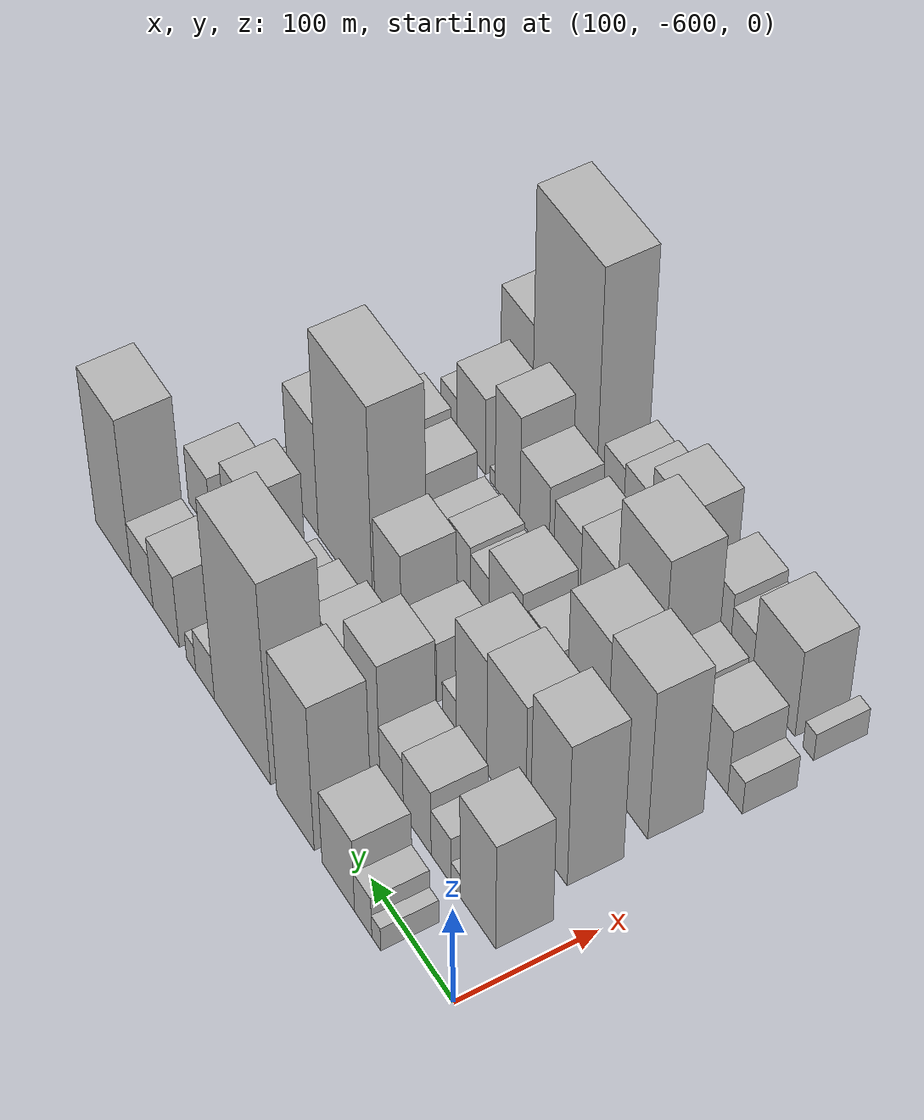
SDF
<sdf version="1.6">
 <world name="default">
  <model name="building_11">
   <static>1</static>
   <pose>100.0000 -541.8997 0 0.000000 0.000000 0.000000</pose>
   <link name="link">
    <pose>0 0 12.00 0 0 0</pose>
    <collision name="collision"><geometry><box><size>40.0000 10.8833 24.0000</size></box></geometry></collision>
    <visual name="visual">
     <cast_shadows>0</cast_shadows>
     <geometry><box><size>40.0000 10.8833 24.0000</size></box></geometry>
     <material>
      <script>
       <uri>model://HANNAS_wall/materials/scripts</uri>
       <uri>model://HANNAS_wall/materials/textures</uri>
       <name>vrc/HANNAS_wall</name>
      </script>
     </material>
    </visual>
   </link>
  </model>
  <model name="building_12">
   <static>1</static>
   <pose>100.0000 -525.7774 0 0.000000 0.000000 0.000000</pose>
   <link name="link">
    <pose>0 0 21.00 0 0 0</pose>
    <collision name="collision"><geometry><box><size>40.0000 21.3615 42.0000</size></box></geometry></collision>
    <visual name="visual">
     <cast_shadows>0</cast_shadows>
     <geometry><box><size>40.0000 21.3615 42.0000</size></box></geometry>
     <material>
      <script>
       <uri>model://HANNAS_wall/materials/scripts</uri>
       <uri>model://HANNAS_wall/materials/textures</uri>
       <name>vrc/HANNAS_wall</name>
      </script>
     </material>
    </visual>
   </link>
  </model>
  <model name="building_13">
   <static>1</static>
   <pose>100.0000 -494.7226 0 0.000000 0.000000 0.000000</pose>
   <link name="link">
    <pose>0 0 37.50 0 0 0</pose>
    <collision name="collision"><geometry><box><size>40.0000 40.7482 75.0000</size></box></geometry></collision>
    <visual name="visual">
     <cast_shadows>0</cast_shadows>
     <geometry><box><size>40.0000 40.7482 75.0000</size></box></geometry>
     <material>
      <script>
       <uri>model://HANNAS_wall/materials/scripts</uri>
       <uri>model://HANNAS_wall/materials/textures</uri>
       <name>vrc/HANNAS_wall</name>
      </script>
     </material>
    </visual>
   </link>
  </model>
  <model name="building_14">
   <static>1</static>
   <pose>100.0000 -440.2460 0 0.000000 0.000000 0.000000</pose>
   <link name="link">
    <pose>0 0 73.50 0 0 0</pose>
    <collision name="collision"><geometry><box><size>40.0000 48.2050 147.0000</size></box></geometry></collision>
    <visual name="visual">
     <cast_shadows>0</cast_shadows>
     <geometry><box><size>40.0000 48.2050 147.0000</size></box></geometry>
     <material>
      <script>
       <uri>model://HANNAS_wall/materials/scripts</uri>
       <uri>model://HANNAS_wall/materials/textures</uri>
       <name>vrc/HANNAS_wall</name>
      </script>
     </material>
    </visual>
   </link>
  </model>
  <model name="building_15">
   <static>1</static>
   <pose>100.0000 -370.8228 0 0.000000 0.000000 0.000000</pose>
   <link name="link">
    <pose>0 0 100.50 0 0 0</pose>
    <collision name="collision"><geometry><box><size>40.0000 74.6413 201.0000</size></box></geometry></collision>
    <visual name="visual">
     <cast_shadows>0</cast_shadows>
     <geometry><box><size>40.0000 74.6413 201.0000</size></box></geometry>
     <material>
      <script>
       <uri>model://HANNAS_wall/materials/scripts</uri>
       <uri>model://HANNAS_wall/materials/textures</uri>
       <name>vrc/HANNAS_wall</name>
      </script>
     </material>
    </visual>
   </link>
  </model>
  <model name="building_16">
   <static>1</static>
   <pose>100.0000 -320.7585 0 0.000000 0.000000 0.000000</pose>
   <link name="link">
    <pose>0 0 22.50 0 0 0</pose>
    <collision name="collision"><geometry><box><size>40.0000 25.4874 45.0000</size></box></geometry></collision>
    <visual name="visual">
     <cast_shadows>0</cast_shadows>
     <geometry><box><size>40.0000 25.4874 45.0000</size></box></geometry>
     <material>
      <script>
       <uri>model://HANNAS_wall/materials/scripts</uri>
       <uri>model://HANNAS_wall/materials/textures</uri>
       <name>vrc/HANNAS_wall</name>
      </script>
     </material>
    </visual>
   </link>
  </model>
  <model name="building_17">
   <static>1</static>
   <pose>100.0000 -301.6495 0 0.000000 0.000000 0.000000</pose>
   <link name="link">
    <pose>0 0 13.50 0 0 0</pose>
    <collision name="collision"><geometry><box><size>40.0000 12.7305 27.0000</size></box></geometry></collision>
    <visual name="visual">
     <cast_shadows>0</cast_shadows>
     <geometry><box><size>40.0000 12.7305 27.0000</size></box></geometry>
     <material>
      <script>
       <uri>model://HANNAS_wall/materials/scripts</uri>
       <uri>model://HANNAS_wall/materials/textures</uri>
       <name>vrc/HANNAS_wall</name>
      </script>
     </material>
    </visual>
   </link>
  </model>
  <model name="building_18">
   <static>1</static>
   <pose>100.0000 -267.0045 0 0.000000 0.000000 0.000000</pose>
   <link name="link">
    <pose>0 0 36.00 0 0 0</pose>
    <collision name="collision"><geometry><box><size>40.0000 36.5595 72.0000</size></box></geometry></collision>
    <visual name="visual">
     <cast_shadows>0</cast_shadows>
     <geometry><box><size>40.0000 36.5595 72.0000</size></box></geometry>
     <material>
      <script>
       <uri>model://HANNAS_wall/materials/scripts</uri>
       <uri>model://HANNAS_wall/materials/textures</uri>
       <name>vrc/HANNAS_wall</name>
      </script>
     </material>
    </visual>
   </link>
  </model>
  <model name="building_19">
   <static>1</static>
   <pose>100.0000 -233.3012 0 0.000000 0.000000 0.000000</pose>
   <link name="link">
    <pose>0 0 27.00 0 0 0</pose>
    <collision name="collision"><geometry><box><size>40.0000 30.8471 54.0000</size></box></geometry></collision>
    <visual name="visual">
     <cast_shadows>0</cast_shadows>
     <geometry><box><size>40.0000 30.8471 54.0000</size></box></geometry>
     <material>
      <script>
       <uri>model://HANNAS_wall/materials/scripts</uri>
       <uri>model://HANNAS_wall/materials/textures</uri>
       <name>vrc/HANNAS_wall</name>
      </script>
     </material>
    </visual>
   </link>
  </model>
  <model name="building_20">
   <static>1</static>
   <pose>100.0000 -192.1349 0 0.000000 0.000000 0.000000</pose>
   <link name="link">
    <pose>0 0 76.50 0 0 0</pose>
    <collision name="collision"><geometry><box><size>40.0000 51.4855 153.0000</size></box></geometry></collision>
    <visual name="visual">
     <cast_shadows>0</cast_shadows>
     <geometry><box><size>40.0000 51.4855 153.0000</size></box></geometry>
     <material>
      <script>
       <uri>model://HANNAS_wall/materials/scripts</uri>
       <uri>model://HANNAS_wall/materials/textures</uri>
       <name>vrc/HANNAS_wall</name>
      </script>
     </material>
    </visual>
   </link>
  </model>
  <model name="building_65">
   <static>1</static>
   <pose>160.0000 -559.3429 0 0.000000 0.000000 0.000000</pose>
   <link name="link">
    <pose>0 0 54.00 0 0 0</pose>
    <collision name="collision"><geometry><box><size>40.0000 42.3483 108.0000</size></box></geometry></collision>
    <visual name="visual">
     <cast_shadows>0</cast_shadows>
     <geometry><box><size>40.0000 42.3483 108.0000</size></box></geometry>
     <material>
      <script>
       <uri>model://HANNAS_wall/materials/scripts</uri>
       <uri>model://HANNAS_wall/materials/textures</uri>
       <name>vrc/HANNAS_wall</name>
      </script>
     </material>
    </visual>
   </link>
  </model>
  <model name="building_66">
   <static>1</static>
   <pose>160.0000 -532.7288 0 0.000000 0.000000 0.000000</pose>
   <link name="link">
    <pose>0 0 12.00 0 0 0</pose>
    <collision name="collision"><geometry><box><size>40.0000 10.8799 24.0000</size></box></geometry></collision>
    <visual name="visual">
     <cast_shadows>0</cast_shadows>
     <geometry><box><size>40.0000 10.8799 24.0000</size></box></geometry>
     <material>
      <script>
       <uri>model://HANNAS_wall/materials/scripts</uri>
       <uri>model://HANNAS_wall/materials/textures</uri>
       <name>vrc/HANNAS_wall</name>
      </script>
     </material>
    </visual>
   </link>
  </model>
  <model name="building_67">
   <static>1</static>
   <pose>160.0000 -515.0730 0 0.000000 0.000000 0.000000</pose>
   <link name="link">
    <pose>0 0 24.00 0 0 0</pose>
    <collision name="collision"><geometry><box><size>40.0000 24.4317 48.0000</size></box></geometry></collision>
    <visual name="visual">
     <cast_shadows>0</cast_shadows>
     <geometry><box><size>40.0000 24.4317 48.0000</size></box></geometry>
     <material>
      <script>
       <uri>model://HANNAS_wall/materials/scripts</uri>
       <uri>model://HANNAS_wall/materials/textures</uri>
       <name>vrc/HANNAS_wall</name>
      </script>
     </material>
    </visual>
   </link>
  </model>
  <model name="building_68">
   <static>1</static>
   <pose>160.0000 -485.7047 0 0.000000 0.000000 0.000000</pose>
   <link name="link">
    <pose>0 0 33.00 0 0 0</pose>
    <collision name="collision"><geometry><box><size>40.0000 34.3048 66.0000</size></box></geometry></collision>
    <visual name="visual">
     <cast_shadows>0</cast_shadows>
     <geometry><box><size>40.0000 34.3048 66.0000</size></box></geometry>
     <material>
      <script>
       <uri>model://HANNAS_wall/materials/scripts</uri>
       <uri>model://HANNAS_wall/materials/textures</uri>
       <name>vrc/HANNAS_wall</name>
      </script>
     </material>
    </visual>
   </link>
  </model>
  <model name="building_69">
   <static>1</static>
   <pose>160.0000 -453.8238 0 0.000000 0.000000 0.000000</pose>
   <link name="link">
    <pose>0 0 28.50 0 0 0</pose>
    <collision name="collision"><geometry><box><size>40.0000 29.4570 57.0000</size></box></geometry></collision>
    <visual name="visual">
     <cast_shadows>0</cast_shadows>
     <geometry><box><size>40.0000 29.4570 57.0000</size></box></geometry>
     <material>
      <script>
       <uri>model://HANNAS_wall/materials/scripts</uri>
       <uri>model://HANNAS_wall/materials/textures</uri>
       <name>vrc/HANNAS_wall</name>
      </script>
     </material>
    </visual>
   </link>
  </model>
  <model name="building_70">
   <static>1</static>
   <pose>160.0000 -418.7206 0 0.000000 0.000000 0.000000</pose>
   <link name="link">
    <pose>0 0 58.50 0 0 0</pose>
    <collision name="collision"><geometry><box><size>40.0000 40.7494 117.0000</size></box></geometry></collision>
    <visual name="visual">
     <cast_shadows>0</cast_shadows>
     <geometry><box><size>40.0000 40.7494 117.0000</size></box></geometry>
     <material>
      <script>
       <uri>model://HANNAS_wall/materials/scripts</uri>
       <uri>model://HANNAS_wall/materials/textures</uri>
       <name>vrc/HANNAS_wall</name>
      </script>
     </material>
    </visual>
   </link>
  </model>
  <model name="building_71">
   <static>1</static>
   <pose>160.0000 -376.1491 0 0.000000 0.000000 0.000000</pose>
   <link name="link">
    <pose>0 0 40.50 0 0 0</pose>
    <collision name="collision"><geometry><box><size>40.0000 44.3936 81.0000</size></box></geometry></collision>
    <visual name="visual">
     <cast_shadows>0</cast_shadows>
     <geometry><box><size>40.0000 44.3936 81.0000</size></box></geometry>
     <material>
      <script>
       <uri>model://HANNAS_wall/materials/scripts</uri>
       <uri>model://HANNAS_wall/materials/textures</uri>
       <name>vrc/HANNAS_wall</name>
      </script>
     </material>
    </visual>
   </link>
  </model>
  <model name="building_72">
   <static>1</static>
   <pose>160.0000 -335.6543 0 0.000000 0.000000 0.000000</pose>
   <link name="link">
    <pose>0 0 31.50 0 0 0</pose>
    <collision name="collision"><geometry><box><size>40.0000 36.5960 63.0000</size></box></geometry></collision>
    <visual name="visual">
     <cast_shadows>0</cast_shadows>
     <geometry><box><size>40.0000 36.5960 63.0000</size></box></geometry>
     <material>
      <script>
       <uri>model://HANNAS_wall/materials/scripts</uri>
       <uri>model://HANNAS_wall/materials/textures</uri>
       <name>vrc/HANNAS_wall</name>
      </script>
     </material>
    </visual>
   </link>
  </model>
  <model name="building_73">
   <static>1</static>
   <pose>160.0000 -302.4188 0 0.000000 0.000000 0.000000</pose>
   <link name="link">
    <pose>0 0 25.50 0 0 0</pose>
    <collision name="collision"><geometry><box><size>40.0000 29.8750 51.0000</size></box></geometry></collision>
    <visual name="visual">
     <cast_shadows>0</cast_shadows>
     <geometry><box><size>40.0000 29.8750 51.0000</size></box></geometry>
     <material>
      <script>
       <uri>model://HANNAS_wall/materials/scripts</uri>
       <uri>model://HANNAS_wall/materials/textures</uri>
       <name>vrc/HANNAS_wall</name>
      </script>
     </material>
    </visual>
   </link>
  </model>
  <model name="building_74">
   <static>1</static>
   <pose>160.0000 -282.8644 0 0.000000 0.000000 0.000000</pose>
   <link name="link">
    <pose>0 0 10.50 0 0 0</pose>
    <collision name="collision"><geometry><box><size>40.0000 9.2337 21.0000</size></box></geometry></collision>
    <visual name="visual">
     <cast_shadows>0</cast_shadows>
     <geometry><box><size>40.0000 9.2337 21.0000</size></box></geometry>
     <material>
      <script>
       <uri>model://HANNAS_wall/materials/scripts</uri>
       <uri>model://HANNAS_wall/materials/textures</uri>
       <name>vrc/HANNAS_wall</name>
      </script>
     </material>
    </visual>
   </link>
  </model>
  <model name="building_75">
   <static>1</static>
   <pose>160.0000 -252.4959 0 0.000000 0.000000 0.000000</pose>
   <link name="link">
    <pose>0 0 48.00 0 0 0</pose>
    <collision name="collision"><geometry><box><size>40.0000 33.5034 96.0000</size></box></geometry></collision>
    <visual name="visual">
     <cast_shadows>0</cast_shadows>
     <geometry><box><size>40.0000 33.5034 96.0000</size></box></geometry>
     <material>
      <script>
       <uri>model://HANNAS_wall/materials/scripts</uri>
       <uri>model://HANNAS_wall/materials/textures</uri>
       <name>vrc/HANNAS_wall</name>
      </script>
     </material>
    </visual>
   </link>
  </model>
  <model name="building_76">
   <static>1</static>
   <pose>160.0000 -232.1043 0 0.000000 0.000000 0.000000</pose>
   <link name="link">
    <pose>0 0 9.00 0 0 0</pose>
    <collision name="collision"><geometry><box><size>40.0000 7.2798 18.0000</size></box></geometry></collision>
    <visual name="visual">
     <cast_shadows>0</cast_shadows>
     <geometry><box><size>40.0000 7.2798 18.0000</size></box></geometry>
     <material>
      <script>
       <uri>model://HANNAS_wall/materials/scripts</uri>
       <uri>model://HANNAS_wall/materials/textures</uri>
       <name>vrc/HANNAS_wall</name>
      </script>
     </material>
    </visual>
   </link>
  </model>
  <model name="building_77">
   <static>1</static>
   <pose>160.0000 -222.8098 0 0.000000 0.000000 0.000000</pose>
   <link name="link">
    <pose>0 0 12.00 0 0 0</pose>
    <collision name="collision"><geometry><box><size>40.0000 11.3092 24.0000</size></box></geometry></collision>
    <visual name="visual">
     <cast_shadows>0</cast_shadows>
     <geometry><box><size>40.0000 11.3092 24.0000</size></box></geometry>
     <material>
      <script>
       <uri>model://HANNAS_wall/materials/scripts</uri>
       <uri>model://HANNAS_wall/materials/textures</uri>
       <name>vrc/HANNAS_wall</name>
      </script>
     </material>
    </visual>
   </link>
  </model>
  <model name="building_78">
   <static>1</static>
   <pose>160.0000 -198.0480 0 0.000000 0.000000 0.000000</pose>
   <link name="link">
    <pose>0 0 28.50 0 0 0</pose>
    <collision name="collision"><geometry><box><size>40.0000 32.2146 57.0000</size></box></geometry></collision>
    <visual name="visual">
     <cast_shadows>0</cast_shadows>
     <geometry><box><size>40.0000 32.2146 57.0000</size></box></geometry>
     <material>
      <script>
       <uri>model://HANNAS_wall/materials/scripts</uri>
       <uri>model://HANNAS_wall/materials/textures</uri>
       <name>vrc/HANNAS_wall</name>
      </script>
     </material>
    </visual>
   </link>
  </model>
  <model name="building_126">
   <static>1</static>
   <pose>220.0000 -541.6400 0 0.000000 0.000000 0.000000</pose>
   <link name="link">
    <pose>0 0 72.00 0 0 0</pose>
    <collision name="collision"><geometry><box><size>40.0000 43.7023 144.0000</size></box></geometry></collision>
    <visual name="visual">
     <cast_shadows>0</cast_shadows>
     <geometry><box><size>40.0000 43.7023 144.0000</size></box></geometry>
     <material>
      <script>
       <uri>model://HANNAS_wall/materials/scripts</uri>
       <uri>model://HANNAS_wall/materials/textures</uri>
       <name>vrc/HANNAS_wall</name>
      </script>
     </material>
    </visual>
   </link>
  </model>
  <model name="building_127">
   <static>1</static>
   <pose>220.0000 -490.3939 0 0.000000 0.000000 0.000000</pose>
   <link name="link">
    <pose>0 0 61.50 0 0 0</pose>
    <collision name="collision"><geometry><box><size>40.0000 46.7900 123.0000</size></box></geometry></collision>
    <visual name="visual">
     <cast_shadows>0</cast_shadows>
     <geometry><box><size>40.0000 46.7900 123.0000</size></box></geometry>
     <material>
      <script>
       <uri>model://HANNAS_wall/materials/scripts</uri>
       <uri>model://HANNAS_wall/materials/textures</uri>
       <name>vrc/HANNAS_wall</name>
      </script>
     </material>
    </visual>
   </link>
  </model>
  <model name="building_128">
   <static>1</static>
   <pose>220.0000 -447.9117 0 0.000000 0.000000 0.000000</pose>
   <link name="link">
    <pose>0 0 57.00 0 0 0</pose>
    <collision name="collision"><geometry><box><size>40.0000 38.1744 114.0000</size></box></geometry></collision>
    <visual name="visual">
     <cast_shadows>0</cast_shadows>
     <geometry><box><size>40.0000 38.1744 114.0000</size></box></geometry>
     <material>
      <script>
       <uri>model://HANNAS_wall/materials/scripts</uri>
       <uri>model://HANNAS_wall/materials/textures</uri>
       <name>vrc/HANNAS_wall</name>
      </script>
     </material>
    </visual>
   </link>
  </model>
  <model name="building_129">
   <static>1</static>
   <pose>220.0000 -420.2541 0 0.000000 0.000000 0.000000</pose>
   <link name="link">
    <pose>0 0 15.00 0 0 0</pose>
    <collision name="collision"><geometry><box><size>40.0000 17.1408 30.0000</size></box></geometry></collision>
    <visual name="visual">
     <cast_shadows>0</cast_shadows>
     <geometry><box><size>40.0000 17.1408 30.0000</size></box></geometry>
     <material>
      <script>
       <uri>model://HANNAS_wall/materials/scripts</uri>
       <uri>model://HANNAS_wall/materials/textures</uri>
       <name>vrc/HANNAS_wall</name>
      </script>
     </material>
    </visual>
   </link>
  </model>
  <model name="building_130">
   <static>1</static>
   <pose>220.0000 -387.1114 0 0.000000 0.000000 0.000000</pose>
   <link name="link">
    <pose>0 0 30.00 0 0 0</pose>
    <collision name="collision"><geometry><box><size>40.0000 35.1445 60.0000</size></box></geometry></collision>
    <visual name="visual">
     <cast_shadows>0</cast_shadows>
     <geometry><box><size>40.0000 35.1445 60.0000</size></box></geometry>
     <material>
      <script>
       <uri>model://HANNAS_wall/materials/scripts</uri>
       <uri>model://HANNAS_wall/materials/textures</uri>
       <name>vrc/HANNAS_wall</name>
      </script>
     </material>
    </visual>
   </link>
  </model>
  <model name="building_131">
   <static>1</static>
   <pose>220.0000 -343.0385 0 0.000000 0.000000 0.000000</pose>
   <link name="link">
    <pose>0 0 49.50 0 0 0</pose>
    <collision name="collision"><geometry><box><size>40.0000 35.0013 99.0000</size></box></geometry></collision>
    <visual name="visual">
     <cast_shadows>0</cast_shadows>
     <geometry><box><size>40.0000 35.0013 99.0000</size></box></geometry>
     <material>
      <script>
       <uri>model://HANNAS_wall/materials/scripts</uri>
       <uri>model://HANNAS_wall/materials/textures</uri>
       <name>vrc/HANNAS_wall</name>
      </script>
     </material>
    </visual>
   </link>
  </model>
  <model name="building_132">
   <static>1</static>
   <pose>220.0000 -286.0686 0 0.000000 0.000000 0.000000</pose>
   <link name="link">
    <pose>0 0 100.50 0 0 0</pose>
    <collision name="collision"><geometry><box><size>40.0000 72.9386 201.0000</size></box></geometry></collision>
    <visual name="visual">
     <cast_shadows>0</cast_shadows>
     <geometry><box><size>40.0000 72.9386 201.0000</size></box></geometry>
     <material>
      <script>
       <uri>model://HANNAS_wall/materials/scripts</uri>
       <uri>model://HANNAS_wall/materials/textures</uri>
       <name>vrc/HANNAS_wall</name>
      </script>
     </material>
    </visual>
   </link>
  </model>
  <model name="building_133">
   <static>1</static>
   <pose>220.0000 -229.3079 0 0.000000 0.000000 0.000000</pose>
   <link name="link">
    <pose>0 0 55.50 0 0 0</pose>
    <collision name="collision"><geometry><box><size>40.0000 40.5828 111.0000</size></box></geometry></collision>
    <visual name="visual">
     <cast_shadows>0</cast_shadows>
     <geometry><box><size>40.0000 40.5828 111.0000</size></box></geometry>
     <material>
      <script>
       <uri>model://HANNAS_wall/materials/scripts</uri>
       <uri>model://HANNAS_wall/materials/textures</uri>
       <name>vrc/HANNAS_wall</name>
      </script>
     </material>
    </visual>
   </link>
  </model>
  <model name="building_134">
   <static>1</static>
   <pose>220.0000 -203.5215 0 0.000000 0.000000 0.000000</pose>
   <link name="link">
    <pose>0 0 13.50 0 0 0</pose>
    <collision name="collision"><geometry><box><size>40.0000 10.9900 27.0000</size></box></geometry></collision>
    <visual name="visual">
     <cast_shadows>0</cast_shadows>
     <geometry><box><size>40.0000 10.9900 27.0000</size></box></geometry>
     <material>
      <script>
       <uri>model://HANNAS_wall/materials/scripts</uri>
       <uri>model://HANNAS_wall/materials/textures</uri>
       <name>vrc/HANNAS_wall</name>
      </script>
     </material>
    </visual>
   </link>
  </model>
  <model name="building_135">
   <static>1</static>
   <pose>220.0000 -193.0680 0 0.000000 0.000000 0.000000</pose>
   <link name="link">
    <pose>0 0 10.50 0 0 0</pose>
    <collision name="collision"><geometry><box><size>40.0000 9.9171 21.0000</size></box></geometry></collision>
    <visual name="visual">
     <cast_shadows>0</cast_shadows>
     <geometry><box><size>40.0000 9.9171 21.0000</size></box></geometry>
     <material>
      <script>
       <uri>model://HANNAS_wall/materials/scripts</uri>
       <uri>model://HANNAS_wall/materials/textures</uri>
       <name>vrc/HANNAS_wall</name>
      </script>
     </material>
    </visual>
   </link>
  </model>
  <model name="building_177">
   <static>1</static>
   <pose>280.0000 -534.4441 0 0.000000 0.000000 0.000000</pose>
   <link name="link">
    <pose>0 0 75.00 0 0 0</pose>
    <collision name="collision"><geometry><box><size>40.0000 49.3274 150.0000</size></box></geometry></collision>
    <visual name="visual">
     <cast_shadows>0</cast_shadows>
     <geometry><box><size>40.0000 49.3274 150.0000</size></box></geometry>
     <material>
      <script>
       <uri>model://HANNAS_wall/materials/scripts</uri>
       <uri>model://HANNAS_wall/materials/textures</uri>
       <name>vrc/HANNAS_wall</name>
      </script>
     </material>
    </visual>
   </link>
  </model>
  <model name="building_178">
   <static>1</static>
   <pose>280.0000 -486.1781 0 0.000000 0.000000 0.000000</pose>
   <link name="link">
    <pose>0 0 70.50 0 0 0</pose>
    <collision name="collision"><geometry><box><size>40.0000 47.2047 141.0000</size></box></geometry></collision>
    <visual name="visual">
     <cast_shadows>0</cast_shadows>
     <geometry><box><size>40.0000 47.2047 141.0000</size></box></geometry>
     <material>
      <script>
       <uri>model://HANNAS_wall/materials/scripts</uri>
       <uri>model://HANNAS_wall/materials/textures</uri>
       <name>vrc/HANNAS_wall</name>
      </script>
     </material>
    </visual>
   </link>
  </model>
  <model name="building_179">
   <static>1</static>
   <pose>280.0000 -433.6228 0 0.000000 0.000000 0.000000</pose>
   <link name="link">
    <pose>0 0 33.00 0 0 0</pose>
    <collision name="collision"><geometry><box><size>40.0000 37.9060 66.0000</size></box></geometry></collision>
    <visual name="visual">
     <cast_shadows>0</cast_shadows>
     <geometry><box><size>40.0000 37.9060 66.0000</size></box></geometry>
     <material>
      <script>
       <uri>model://HANNAS_wall/materials/scripts</uri>
       <uri>model://HANNAS_wall/materials/textures</uri>
       <name>vrc/HANNAS_wall</name>
      </script>
     </material>
    </visual>
   </link>
  </model>
  <model name="building_180">
   <static>1</static>
   <pose>280.0000 -411.3586 0 0.000000 0.000000 0.000000</pose>
   <link name="link">
    <pose>0 0 7.50 0 0 0</pose>
    <collision name="collision"><geometry><box><size>40.0000 6.6224 15.0000</size></box></geometry></collision>
    <visual name="visual">
     <cast_shadows>0</cast_shadows>
     <geometry><box><size>40.0000 6.6224 15.0000</size></box></geometry>
     <material>
      <script>
       <uri>model://HANNAS_wall/materials/scripts</uri>
       <uri>model://HANNAS_wall/materials/textures</uri>
       <name>vrc/HANNAS_wall</name>
      </script>
     </material>
    </visual>
   </link>
  </model>
  <model name="building_181">
   <static>1</static>
   <pose>280.0000 -387.4340 0 0.000000 0.000000 0.000000</pose>
   <link name="link">
    <pose>0 0 37.50 0 0 0</pose>
    <collision name="collision"><geometry><box><size>40.0000 41.2268 75.0000</size></box></geometry></collision>
    <visual name="visual">
     <cast_shadows>0</cast_shadows>
     <geometry><box><size>40.0000 41.2268 75.0000</size></box></geometry>
     <material>
      <script>
       <uri>model://HANNAS_wall/materials/scripts</uri>
       <uri>model://HANNAS_wall/materials/textures</uri>
       <name>vrc/HANNAS_wall</name>
      </script>
     </material>
    </visual>
   </link>
  </model>
  <model name="building_182">
   <static>1</static>
   <pose>280.0000 -355.0391 0 0.000000 0.000000 0.000000</pose>
   <link name="link">
    <pose>0 0 22.50 0 0 0</pose>
    <collision name="collision"><geometry><box><size>40.0000 23.5630 45.0000</size></box></geometry></collision>
    <visual name="visual">
     <cast_shadows>0</cast_shadows>
     <geometry><box><size>40.0000 23.5630 45.0000</size></box></geometry>
     <material>
      <script>
       <uri>model://HANNAS_wall/materials/scripts</uri>
       <uri>model://HANNAS_wall/materials/textures</uri>
       <name>vrc/HANNAS_wall</name>
      </script>
     </material>
    </visual>
   </link>
  </model>
  <model name="building_183">
   <static>1</static>
   <pose>280.0000 -329.2338 0 0.000000 0.000000 0.000000</pose>
   <link name="link">
    <pose>0 0 25.50 0 0 0</pose>
    <collision name="collision"><geometry><box><size>40.0000 28.0474 51.0000</size></box></geometry></collision>
    <visual name="visual">
     <cast_shadows>0</cast_shadows>
     <geometry><box><size>40.0000 28.0474 51.0000</size></box></geometry>
     <material>
      <script>
       <uri>model://HANNAS_wall/materials/scripts</uri>
       <uri>model://HANNAS_wall/materials/textures</uri>
       <name>vrc/HANNAS_wall</name>
      </script>
     </material>
    </visual>
   </link>
  </model>
  <model name="building_184">
   <static>1</static>
   <pose>280.0000 -303.7472 0 0.000000 0.000000 0.000000</pose>
   <link name="link">
    <pose>0 0 22.50 0 0 0</pose>
    <collision name="collision"><geometry><box><size>40.0000 22.9258 45.0000</size></box></geometry></collision>
    <visual name="visual">
     <cast_shadows>0</cast_shadows>
     <geometry><box><size>40.0000 22.9258 45.0000</size></box></geometry>
     <material>
      <script>
       <uri>model://HANNAS_wall/materials/scripts</uri>
       <uri>model://HANNAS_wall/materials/textures</uri>
       <name>vrc/HANNAS_wall</name>
      </script>
     </material>
    </visual>
   </link>
  </model>
  <model name="building_185">
   <static>1</static>
   <pose>280.0000 -266.4656 0 0.000000 0.000000 0.000000</pose>
   <link name="link">
    <pose>0 0 30.00 0 0 0</pose>
    <collision name="collision"><geometry><box><size>40.0000 33.6374 60.0000</size></box></geometry></collision>
    <visual name="visual">
     <cast_shadows>0</cast_shadows>
     <geometry><box><size>40.0000 33.6374 60.0000</size></box></geometry>
     <material>
      <script>
       <uri>model://HANNAS_wall/materials/scripts</uri>
       <uri>model://HANNAS_wall/materials/textures</uri>
       <name>vrc/HANNAS_wall</name>
      </script>
     </material>
    </visual>
   </link>
  </model>
  <model name="building_186">
   <static>1</static>
   <pose>280.0000 -231.9913 0 0.000000 0.000000 0.000000</pose>
   <link name="link">
    <pose>0 0 34.50 0 0 0</pose>
    <collision name="collision"><geometry><box><size>40.0000 35.3112 69.0000</size></box></geometry></collision>
    <visual name="visual">
     <cast_shadows>0</cast_shadows>
     <geometry><box><size>40.0000 35.3112 69.0000</size></box></geometry>
     <material>
      <script>
       <uri>model://HANNAS_wall/materials/scripts</uri>
       <uri>model://HANNAS_wall/materials/textures</uri>
       <name>vrc/HANNAS_wall</name>
      </script>
     </material>
    </visual>
   </link>
  </model>
  <model name="building_187">
   <static>1</static>
   <pose>280.0000 -191.3762 0 0.000000 0.000000 0.000000</pose>
   <link name="link">
    <pose>0 0 24.00 0 0 0</pose>
    <collision name="collision"><geometry><box><size>40.0000 25.9190 48.0000</size></box></geometry></collision>
    <visual name="visual">
     <cast_shadows>0</cast_shadows>
     <geometry><box><size>40.0000 25.9190 48.0000</size></box></geometry>
     <material>
      <script>
       <uri>model://HANNAS_wall/materials/scripts</uri>
       <uri>model://HANNAS_wall/materials/textures</uri>
       <name>vrc/HANNAS_wall</name>
      </script>
     </material>
    </visual>
   </link>
  </model>
  <model name="building_239">
   <static>1</static>
   <pose>340.0000 -564.0219 0 0.000000 0.000000 0.000000</pose>
   <link name="link">
    <pose>0 0 16.50 0 0 0</pose>
    <collision name="collision"><geometry><box><size>40.0000 16.5750 33.0000</size></box></geometry></collision>
    <visual name="visual">
     <cast_shadows>0</cast_shadows>
     <geometry><box><size>40.0000 16.5750 33.0000</size></box></geometry>
     <material>
      <script>
       <uri>model://HANNAS_wall/materials/scripts</uri>
       <uri>model://HANNAS_wall/materials/textures</uri>
       <name>vrc/HANNAS_wall</name>
      </script>
     </material>
    </visual>
   </link>
  </model>
  <model name="building_240">
   <static>1</static>
   <pose>340.0000 -535.9977 0 0.000000 0.000000 0.000000</pose>
   <link name="link">
    <pose>0 0 33.00 0 0 0</pose>
    <collision name="collision"><geometry><box><size>40.0000 39.4734 66.0000</size></box></geometry></collision>
    <visual name="visual">
     <cast_shadows>0</cast_shadows>
     <geometry><box><size>40.0000 39.4734 66.0000</size></box></geometry>
     <material>
      <script>
       <uri>model://HANNAS_wall/materials/scripts</uri>
       <uri>model://HANNAS_wall/materials/textures</uri>
       <name>vrc/HANNAS_wall</name>
      </script>
     </material>
    </visual>
   </link>
  </model>
  <model name="building_241">
   <static>1</static>
   <pose>340.0000 -495.0600 0 0.000000 0.000000 0.000000</pose>
   <link name="link">
    <pose>0 0 31.50 0 0 0</pose>
    <collision name="collision"><geometry><box><size>40.0000 32.4020 63.0000</size></box></geometry></collision>
    <visual name="visual">
     <cast_shadows>0</cast_shadows>
     <geometry><box><size>40.0000 32.4020 63.0000</size></box></geometry>
     <material>
      <script>
       <uri>model://HANNAS_wall/materials/scripts</uri>
       <uri>model://HANNAS_wall/materials/textures</uri>
       <name>vrc/HANNAS_wall</name>
      </script>
     </material>
    </visual>
   </link>
  </model>
  <model name="building_242">
   <static>1</static>
   <pose>340.0000 -450.9078 0 0.000000 0.000000 0.000000</pose>
   <link name="link">
    <pose>0 0 73.50 0 0 0</pose>
    <collision name="collision"><geometry><box><size>40.0000 55.9024 147.0000</size></box></geometry></collision>
    <visual name="visual">
     <cast_shadows>0</cast_shadows>
     <geometry><box><size>40.0000 55.9024 147.0000</size></box></geometry>
     <material>
      <script>
       <uri>model://HANNAS_wall/materials/scripts</uri>
       <uri>model://HANNAS_wall/materials/textures</uri>
       <name>vrc/HANNAS_wall</name>
      </script>
     </material>
    </visual>
   </link>
  </model>
  <model name="building_243">
   <static>1</static>
   <pose>340.0000 -401.4774 0 0.000000 0.000000 0.000000</pose>
   <link name="link">
    <pose>0 0 37.50 0 0 0</pose>
    <collision name="collision"><geometry><box><size>40.0000 42.9585 75.0000</size></box></geometry></collision>
    <visual name="visual">
     <cast_shadows>0</cast_shadows>
     <geometry><box><size>40.0000 42.9585 75.0000</size></box></geometry>
     <material>
      <script>
       <uri>model://HANNAS_wall/materials/scripts</uri>
       <uri>model://HANNAS_wall/materials/textures</uri>
       <name>vrc/HANNAS_wall</name>
      </script>
     </material>
    </visual>
   </link>
  </model>
  <model name="building_244">
   <static>1</static>
   <pose>340.0000 -363.4784 0 0.000000 0.000000 0.000000</pose>
   <link name="link">
    <pose>0 0 33.00 0 0 0</pose>
    <collision name="collision"><geometry><box><size>40.0000 33.0395 66.0000</size></box></geometry></collision>
    <visual name="visual">
     <cast_shadows>0</cast_shadows>
     <geometry><box><size>40.0000 33.0395 66.0000</size></box></geometry>
     <material>
      <script>
       <uri>model://HANNAS_wall/materials/scripts</uri>
       <uri>model://HANNAS_wall/materials/textures</uri>
       <name>vrc/HANNAS_wall</name>
      </script>
     </material>
    </visual>
   </link>
  </model>
  <model name="building_245">
   <static>1</static>
   <pose>340.0000 -322.4895 0 0.000000 0.000000 0.000000</pose>
   <link name="link">
    <pose>0 0 36.00 0 0 0</pose>
    <collision name="collision"><geometry><box><size>40.0000 36.9385 72.0000</size></box></geometry></collision>
    <visual name="visual">
     <cast_shadows>0</cast_shadows>
     <geometry><box><size>40.0000 36.9385 72.0000</size></box></geometry>
     <material>
      <script>
       <uri>model://HANNAS_wall/materials/scripts</uri>
       <uri>model://HANNAS_wall/materials/textures</uri>
       <name>vrc/HANNAS_wall</name>
      </script>
     </material>
    </visual>
   </link>
  </model>
  <model name="building_246">
   <static>1</static>
   <pose>340.0000 -288.0757 0 0.000000 0.000000 0.000000</pose>
   <link name="link">
    <pose>0 0 51.00 0 0 0</pose>
    <collision name="collision"><geometry><box><size>40.0000 31.8890 102.0000</size></box></geometry></collision>
    <visual name="visual">
     <cast_shadows>0</cast_shadows>
     <geometry><box><size>40.0000 31.8890 102.0000</size></box></geometry>
     <material>
      <script>
       <uri>model://HANNAS_wall/materials/scripts</uri>
       <uri>model://HANNAS_wall/materials/textures</uri>
       <name>vrc/HANNAS_wall</name>
      </script>
     </material>
    </visual>
   </link>
  </model>
  <model name="building_247">
   <static>1</static>
   <pose>340.0000 -268.7389 0 0.000000 0.000000 0.000000</pose>
   <link name="link">
    <pose>0 0 7.50 0 0 0</pose>
    <collision name="collision"><geometry><box><size>40.0000 6.7847 15.0000</size></box></geometry></collision>
    <visual name="visual">
     <cast_shadows>0</cast_shadows>
     <geometry><box><size>40.0000 6.7847 15.0000</size></box></geometry>
     <material>
      <script>
       <uri>model://HANNAS_wall/materials/scripts</uri>
       <uri>model://HANNAS_wall/materials/textures</uri>
       <name>vrc/HANNAS_wall</name>
      </script>
     </material>
    </visual>
   </link>
  </model>
  <model name="building_248">
   <static>1</static>
   <pose>340.0000 -240.5138 0 0.000000 0.000000 0.000000</pose>
   <link name="link">
    <pose>0 0 37.50 0 0 0</pose>
    <collision name="collision"><geometry><box><size>40.0000 37.6655 75.0000</size></box></geometry></collision>
    <visual name="visual">
     <cast_shadows>0</cast_shadows>
     <geometry><box><size>40.0000 37.6655 75.0000</size></box></geometry>
     <material>
      <script>
       <uri>model://HANNAS_wall/materials/scripts</uri>
       <uri>model://HANNAS_wall/materials/textures</uri>
       <name>vrc/HANNAS_wall</name>
      </script>
     </material>
    </visual>
   </link>
  </model>
  <model name="building_249">
   <static>1</static>
   <pose>340.0000 -211.0846 0 0.000000 0.000000 0.000000</pose>
   <link name="link">
    <pose>0 0 19.50 0 0 0</pose>
    <collision name="collision"><geometry><box><size>40.0000 21.1928 39.0000</size></box></geometry></collision>
    <visual name="visual">
     <cast_shadows>0</cast_shadows>
     <geometry><box><size>40.0000 21.1928 39.0000</size></box></geometry>
     <material>
      <script>
       <uri>model://HANNAS_wall/materials/scripts</uri>
       <uri>model://HANNAS_wall/materials/textures</uri>
       <name>vrc/HANNAS_wall</name>
      </script>
     </material>
    </visual>
   </link>
  </model>
  <model name="building_291">
   <static>1</static>
   <pose>400.0000 -554.6394 0 0.000000 0.000000 0.000000</pose>
   <link name="link">
    <pose>0 0 13.50 0 0 0</pose>
    <collision name="collision"><geometry><box><size>40.0000 12.0509 27.0000</size></box></geometry></collision>
    <visual name="visual">
     <cast_shadows>0</cast_shadows>
     <geometry><box><size>40.0000 12.0509 27.0000</size></box></geometry>
     <material>
      <script>
       <uri>model://HANNAS_wall/materials/scripts</uri>
       <uri>model://HANNAS_wall/materials/textures</uri>
       <name>vrc/HANNAS_wall</name>
      </script>
     </material>
    </visual>
   </link>
  </model>
  <model name="building_292">
   <static>1</static>
   <pose>400.0000 -514.8739 0 0.000000 0.000000 0.000000</pose>
   <link name="link">
    <pose>0 0 43.50 0 0 0</pose>
    <collision name="collision"><geometry><box><size>40.0000 49.4802 87.0000</size></box></geometry></collision>
    <visual name="visual">
     <cast_shadows>0</cast_shadows>
     <geometry><box><size>40.0000 49.4802 87.0000</size></box></geometry>
     <material>
      <script>
       <uri>model://HANNAS_wall/materials/scripts</uri>
       <uri>model://HANNAS_wall/materials/textures</uri>
       <name>vrc/HANNAS_wall</name>
      </script>
     </material>
    </visual>
   </link>
  </model>
  <model name="building_293">
   <static>1</static>
   <pose>400.0000 -477.2247 0 0.000000 0.000000 0.000000</pose>
   <link name="link">
    <pose>0 0 24.00 0 0 0</pose>
    <collision name="collision"><geometry><box><size>40.0000 25.8182 48.0000</size></box></geometry></collision>
    <visual name="visual">
     <cast_shadows>0</cast_shadows>
     <geometry><box><size>40.0000 25.8182 48.0000</size></box></geometry>
     <material>
      <script>
       <uri>model://HANNAS_wall/materials/scripts</uri>
       <uri>model://HANNAS_wall/materials/textures</uri>
       <name>vrc/HANNAS_wall</name>
      </script>
     </material>
    </visual>
   </link>
  </model>
  <model name="building_294">
   <static>1</static>
   <pose>400.0000 -446.6096 0 0.000000 0.000000 0.000000</pose>
   <link name="link">
    <pose>0 0 30.00 0 0 0</pose>
    <collision name="collision"><geometry><box><size>40.0000 35.4119 60.0000</size></box></geometry></collision>
    <visual name="visual">
     <cast_shadows>0</cast_shadows>
     <geometry><box><size>40.0000 35.4119 60.0000</size></box></geometry>
     <material>
      <script>
       <uri>model://HANNAS_wall/materials/scripts</uri>
       <uri>model://HANNAS_wall/materials/textures</uri>
       <name>vrc/HANNAS_wall</name>
      </script>
     </material>
    </visual>
   </link>
  </model>
  <model name="building_295">
   <static>1</static>
   <pose>400.0000 -423.7568 0 0.000000 0.000000 0.000000</pose>
   <link name="link">
    <pose>0 0 10.50 0 0 0</pose>
    <collision name="collision"><geometry><box><size>40.0000 10.2938 21.0000</size></box></geometry></collision>
    <visual name="visual">
     <cast_shadows>0</cast_shadows>
     <geometry><box><size>40.0000 10.2938 21.0000</size></box></geometry>
     <material>
      <script>
       <uri>model://HANNAS_wall/materials/scripts</uri>
       <uri>model://HANNAS_wall/materials/textures</uri>
       <name>vrc/HANNAS_wall</name>
      </script>
     </material>
    </visual>
   </link>
  </model>
  <model name="building_296">
   <static>1</static>
   <pose>400.0000 -414.5421 0 0.000000 0.000000 0.000000</pose>
   <link name="link">
    <pose>0 0 9.00 0 0 0</pose>
    <collision name="collision"><geometry><box><size>40.0000 8.1355 18.0000</size></box></geometry></collision>
    <visual name="visual">
     <cast_shadows>0</cast_shadows>
     <geometry><box><size>40.0000 8.1355 18.0000</size></box></geometry>
     <material>
      <script>
       <uri>model://HANNAS_wall/materials/scripts</uri>
       <uri>model://HANNAS_wall/materials/textures</uri>
       <name>vrc/HANNAS_wall</name>
      </script>
     </material>
    </visual>
   </link>
  </model>
  <model name="building_297">
   <static>1</static>
   <pose>400.0000 -389.1699 0 0.000000 0.000000 0.000000</pose>
   <link name="link">
    <pose>0 0 42.00 0 0 0</pose>
    <collision name="collision"><geometry><box><size>40.0000 42.6088 84.0000</size></box></geometry></collision>
    <visual name="visual">
     <cast_shadows>0</cast_shadows>
     <geometry><box><size>40.0000 42.6088 84.0000</size></box></geometry>
     <material>
      <script>
       <uri>model://HANNAS_wall/materials/scripts</uri>
       <uri>model://HANNAS_wall/materials/textures</uri>
       <name>vrc/HANNAS_wall</name>
      </script>
     </material>
    </visual>
   </link>
  </model>
  <model name="building_298">
   <static>1</static>
   <pose>400.0000 -349.1117 0 0.000000 0.000000 0.000000</pose>
   <link name="link">
    <pose>0 0 27.00 0 0 0</pose>
    <collision name="collision"><geometry><box><size>40.0000 27.5076 54.0000</size></box></geometry></collision>
    <visual name="visual">
     <cast_shadows>0</cast_shadows>
     <geometry><box><size>40.0000 27.5076 54.0000</size></box></geometry>
     <material>
      <script>
       <uri>model://HANNAS_wall/materials/scripts</uri>
       <uri>model://HANNAS_wall/materials/textures</uri>
       <name>vrc/HANNAS_wall</name>
      </script>
     </material>
    </visual>
   </link>
  </model>
  <model name="building_299">
   <static>1</static>
   <pose>400.0000 -322.6188 0 0.000000 0.000000 0.000000</pose>
   <link name="link">
    <pose>0 0 24.00 0 0 0</pose>
    <collision name="collision"><geometry><box><size>40.0000 25.4782 48.0000</size></box></geometry></collision>
    <visual name="visual">
     <cast_shadows>0</cast_shadows>
     <geometry><box><size>40.0000 25.4782 48.0000</size></box></geometry>
     <material>
      <script>
       <uri>model://HANNAS_wall/materials/scripts</uri>
       <uri>model://HANNAS_wall/materials/textures</uri>
       <name>vrc/HANNAS_wall</name>
      </script>
     </material>
    </visual>
   </link>
  </model>
  <model name="building_300">
   <static>1</static>
   <pose>400.0000 -260.7506 0 0.000000 0.000000 0.000000</pose>
   <link name="link">
    <pose>0 0 103.50 0 0 0</pose>
    <collision name="collision"><geometry><box><size>40.0000 82.2582 207.0000</size></box></geometry></collision>
    <visual name="visual">
     <cast_shadows>0</cast_shadows>
     <geometry><box><size>40.0000 82.2582 207.0000</size></box></geometry>
     <material>
      <script>
       <uri>model://HANNAS_wall/materials/scripts</uri>
       <uri>model://HANNAS_wall/materials/textures</uri>
       <name>vrc/HANNAS_wall</name>
      </script>
     </material>
    </visual>
   </link>
  </model>
  <model name="building_301">
   <static>1</static>
   <pose>400.0000 -198.4841 0 0.000000 0.000000 0.000000</pose>
   <link name="link">
    <pose>0 0 37.50 0 0 0</pose>
    <collision name="collision"><geometry><box><size>40.0000 42.2748 75.0000</size></box></geometry></collision>
    <visual name="visual">
     <cast_shadows>0</cast_shadows>
     <geometry><box><size>40.0000 42.2748 75.0000</size></box></geometry>
     <material>
      <script>
       <uri>model://HANNAS_wall/materials/scripts</uri>
       <uri>model://HANNAS_wall/materials/textures</uri>
       <name>vrc/HANNAS_wall</name>
      </script>
     </material>
    </visual>
   </link>
  </model>
 </world>
</sdf>
